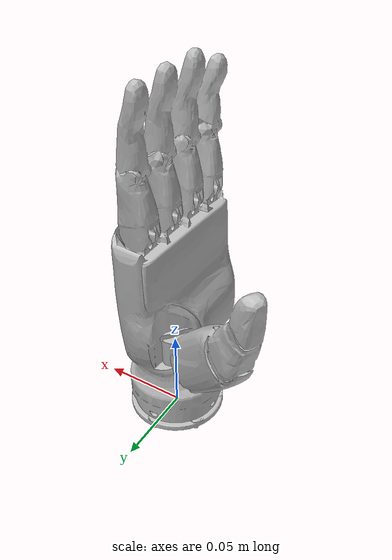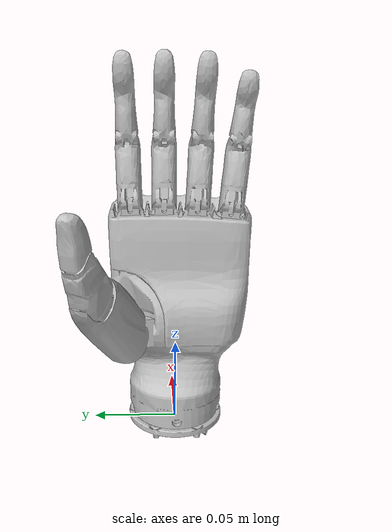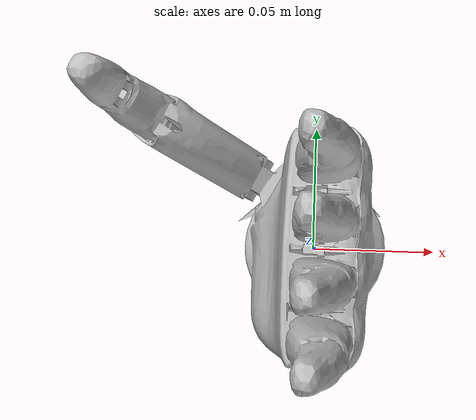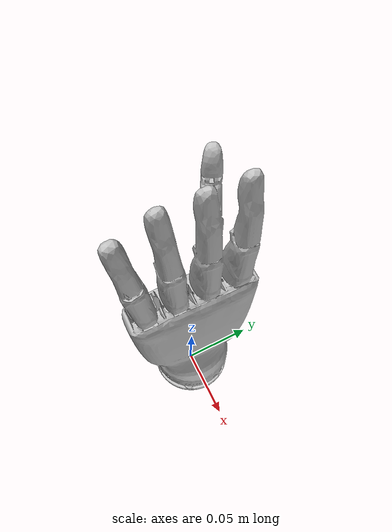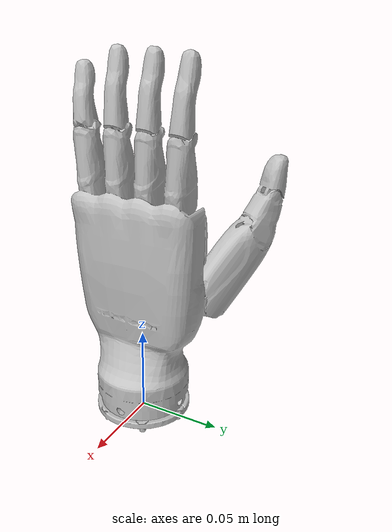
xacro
<?xml version="1.0"?>
<robot name="left_hand" xmlns:xacro="http://www.ros.org/wiki/xacro">
  <!-- Define constants -->
  <xacro:property name="mesh_path" value="file://$(find dual_rm_description)/meshes/arms_65b/" />
  <!-- Macro for visual and collision elements -->
  <xacro:macro name="visual_collision" params="mesh">
    <visual>
      <origin xyz="0 0 0" rpy="0 0 0" />
      <geometry>
        <mesh filename="${mesh_path}${mesh}" />
      </geometry>
      <material name="">
        <color rgba="0.75294 0.75294 0.75294 1" />
      </material>
    </visual>
    <collision>
      <origin xyz="0 0 0" rpy="0 0 0" />
      <geometry>
        <mesh filename="${mesh_path}${mesh}" />
      </geometry>
    </collision>
  </xacro:macro>
  <link
    name="l_hand_base_link">
    <inertial>
      <origin
        xyz="-0.0032674 -0.0073505 0.084948"
        rpy="0 0 0" />
      <mass
        value="0.19134" />
      <inertia
        ixx="0.00048203"
        ixy="-4.1698E-05"
        ixz="-5.5358E-06"
        iyy="0.00051126"
        iyz="-2.6069E-06"
        izz="0.00019085" />
    </inertial>
    <xacro:visual_collision mesh="l_hand_base_link.STL" />
  </link>
</robot>
